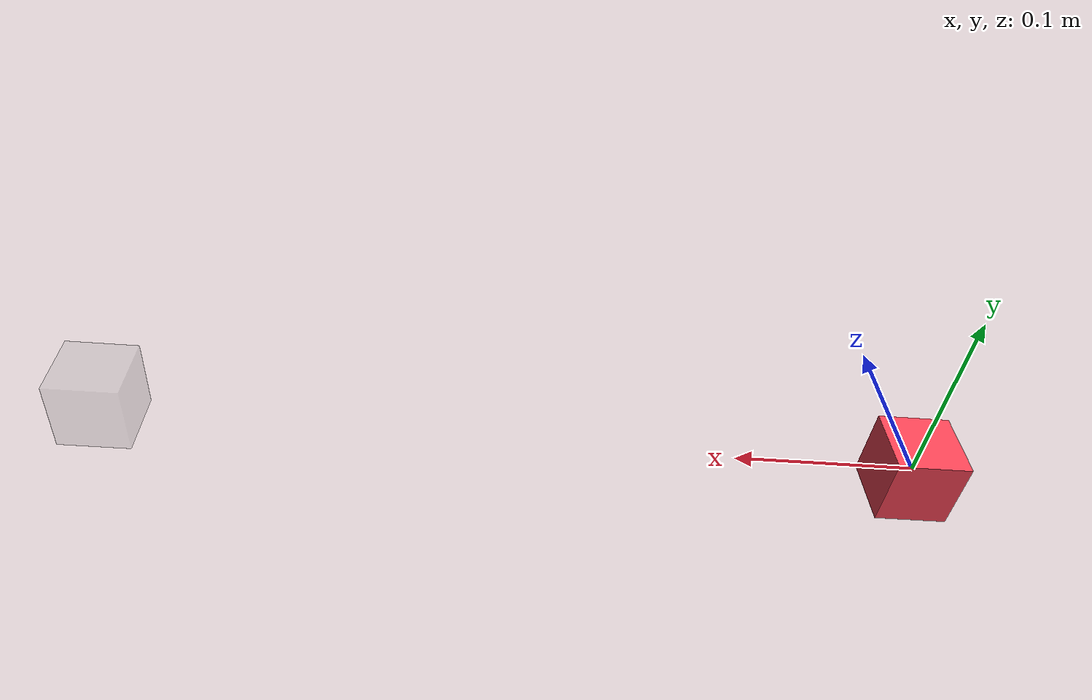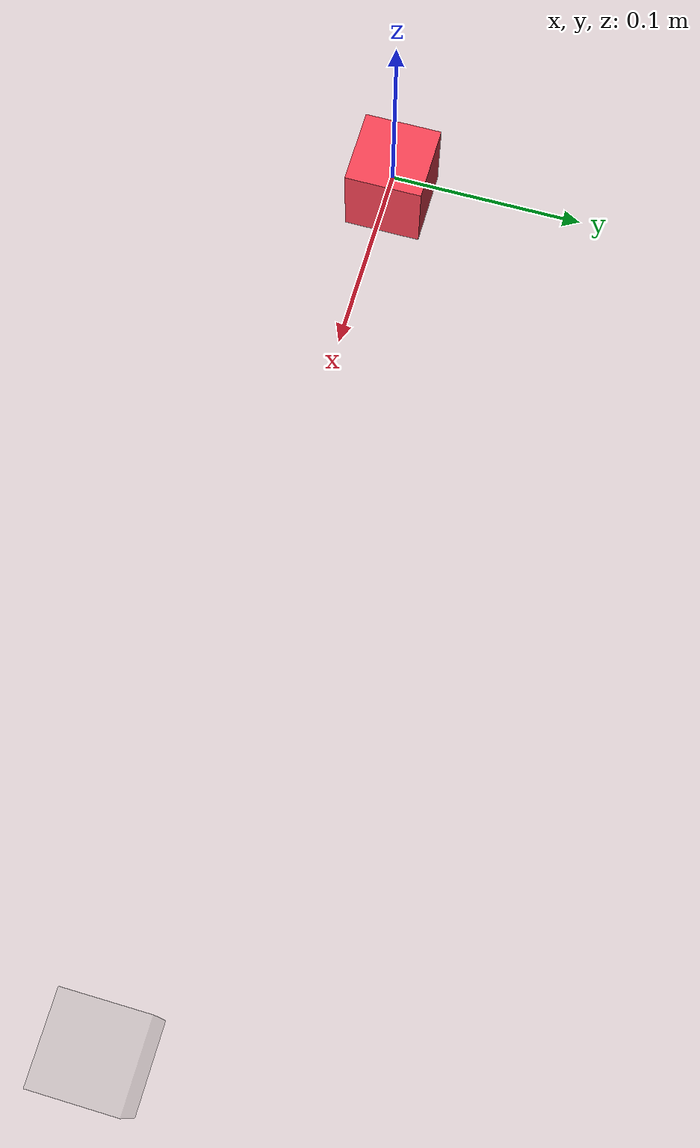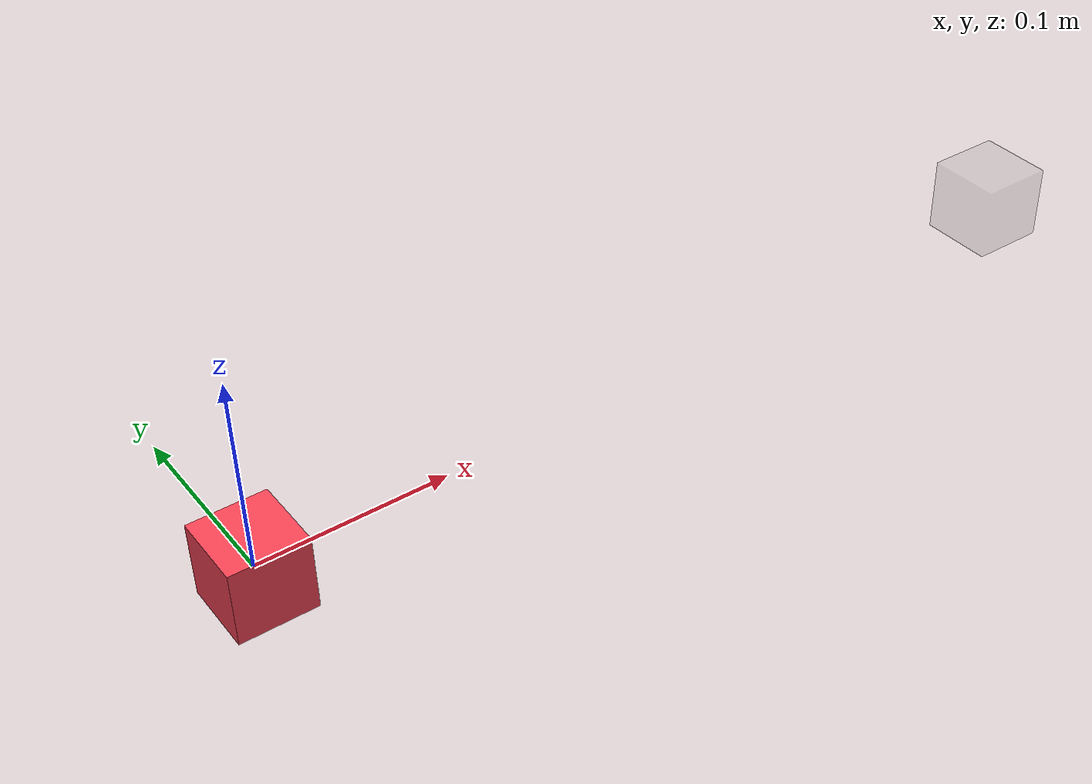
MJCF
<?xml version="1.0" encoding="UTF-8"?>
<mujoco model="cube">
    <default>
        <default class="cube">
            <geom type="box" size="0.02 0.02 0.02" rgba="0.96 0.26 0.33 1.0" density="1240" solref="0.004 1" contype="3" group="1" />
            <site type="sphere" size=".005" rgba="0 1 0 1" group="5" />
        </default>
    </default>

    <worldbody>
        <body name="object_0" pos="0 0 0">
            <freejoint name="object_joint_0" />
            <geom name="object_0" class="cube" />
            <site name="com_0" group="5" />
        </body>
        <body name="object_target_0" pos="0.45 0 .02" mocap="true">
            <geom name="target_object_0" class="cube" rgba=".5 .5 .5 .2" contype="0" conaffinity="0" />
        </body>
    </worldbody>
</mujoco>
